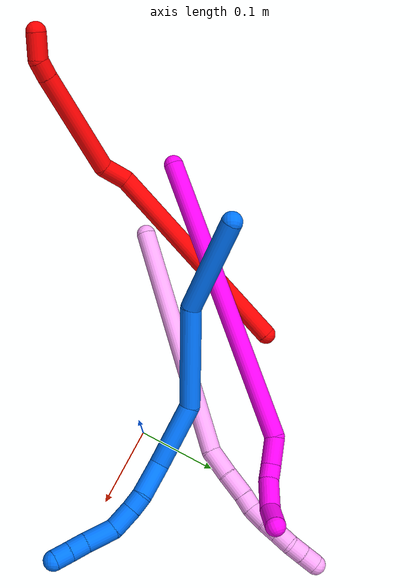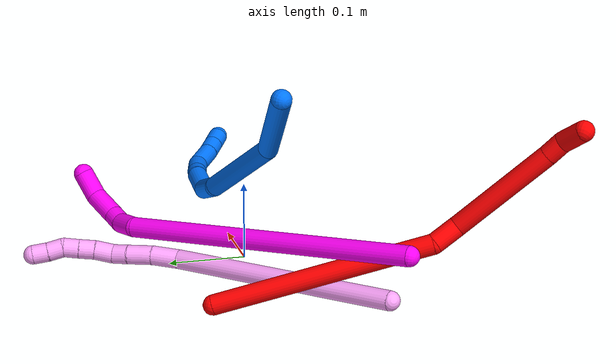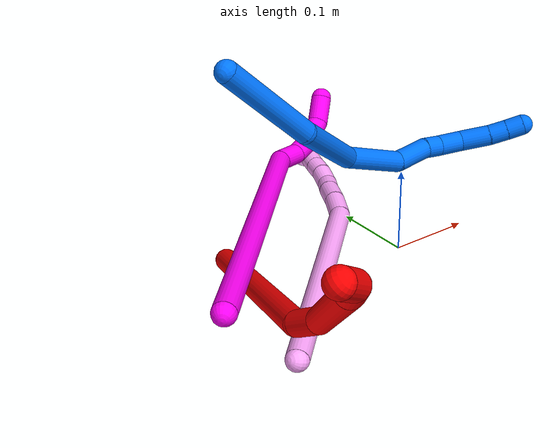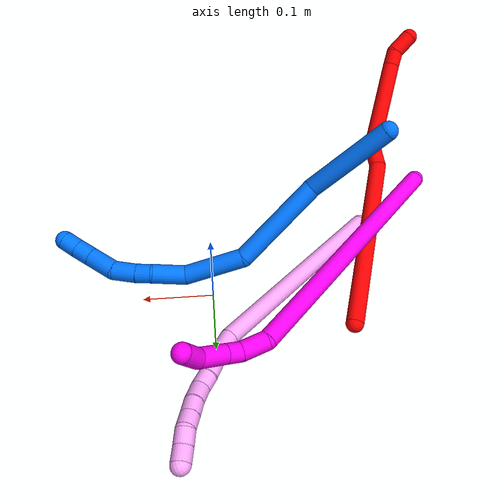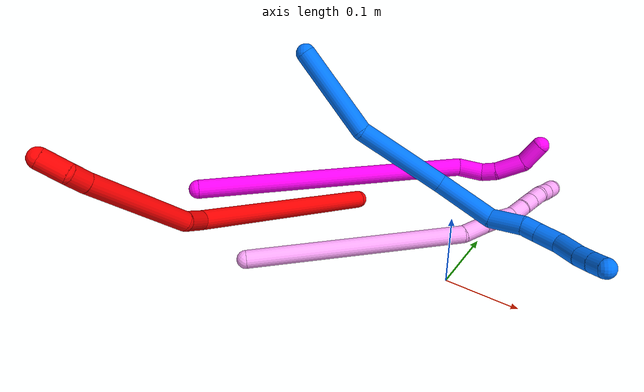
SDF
<sdf version="1.7">
 <world name="default">
  <model name="2">
   <static>0</static>
   <link name="2">
    <collision name="collision-cylinder-e_1_1_4">
     <pose>0.003192 -0.111899 0.077796 0.963275 0.023416 0.01224</pose>
     <geometry><cylinder><radius>0.0125</radius><length>0.272644</length></cylinder></geometry>
     <surface>
      <friction><ode><mu>1.16</mu><mu2>1.16</mu2><slip1>0</slip1><slip2>0</slip2></ode></friction>
      <contact><ode><kp>1e+06</kp><kd>1</kd><max_vel>0</max_vel><min_depth>0.001</min_depth></ode></contact>
     </surface>
    </collision>
    <visual name="visual-cylinder-e_1_1_4">
     <pose>0.003192 -0.111899 0.077796 0.963275 0.023416 0.01224</pose>
     <geometry><cylinder><radius>0.0125</radius><length>0.272644</length></cylinder></geometry>
     <material><ambient>1 0 0 1</ambient></material>
    </visual>
    <collision name="collision-cylinder-e_2_4_5">
     <pose>0.00763 -0.232068 0.170659 0.502004 0.072409 0.018574</pose>
     <geometry><cylinder><radius>0.0125</radius><length>0.034466</length></cylinder></geometry>
     <surface>
      <friction><ode><mu>1.16</mu><mu2>1.16</mu2><slip1>0</slip1><slip2>0</slip2></ode></friction>
      <contact><ode><kp>1e+06</kp><kd>1</kd><max_vel>0</max_vel><min_depth>0.001</min_depth></ode></contact>
     </surface>
    </collision>
    <visual name="visual-cylinder-e_2_4_5">
     <pose>0.00763 -0.232068 0.170659 0.502004 0.072409 0.018574</pose>
     <geometry><cylinder><radius>0.0125</radius><length>0.034466</length></cylinder></geometry>
     <material><ambient>1 0 0 1</ambient></material>
    </visual>
    <collision name="collision-cylinder-e_3_5_6">
     <pose>-0.014732 -0.282681 0.23357 0.724483 -0.353971 -0.135353</pose>
     <geometry><cylinder><radius>0.0125</radius><length>0.136225</length></cylinder></geometry>
     <surface>
      <friction><ode><mu>1.16</mu><mu2>1.16</mu2><slip1>0</slip1><slip2>0</slip2></ode></friction>
      <contact><ode><kp>1e+06</kp><kd>1</kd><max_vel>0</max_vel><min_depth>0.001</min_depth></ode></contact>
     </surface>
    </collision>
    <visual name="visual-cylinder-e_3_5_6">
     <pose>-0.014732 -0.282681 0.23357 0.724483 -0.353971 -0.135353</pose>
     <geometry><cylinder><radius>0.0125</radius><length>0.136225</length></cylinder></geometry>
     <material><ambient>1 0 0 1</ambient></material>
    </visual>
    <collision name="collision-cylinder-e_4_6_7">
     <pose>-0.043186 -0.331814 0.289452 0.701419 -0.43141 -0.159976</pose>
     <geometry><cylinder><radius>0.0125</radius><length>0.023169</length></cylinder></geometry>
     <surface>
      <friction><ode><mu>1.16</mu><mu2>1.16</mu2><slip1>0</slip1><slip2>0</slip2></ode></friction>
      <contact><ode><kp>1e+06</kp><kd>1</kd><max_vel>0</max_vel><min_depth>0.001</min_depth></ode></contact>
     </surface>
    </collision>
    <visual name="visual-cylinder-e_4_6_7">
     <pose>-0.043186 -0.331814 0.289452 0.701419 -0.43141 -0.159976</pose>
     <geometry><cylinder><radius>0.0125</radius><length>0.023169</length></cylinder></geometry>
     <material><ambient>1 0 0 1</ambient></material>
    </visual>
    <collision name="collision-cylinder-e_5_7_2">
     <pose>-0.058304 -0.35095 0.30224 1.20358 -0.6604 -0.462358</pose>
     <geometry><cylinder><radius>0.0125</radius><length>0.033496</length></cylinder></geometry>
     <surface>
      <friction><ode><mu>1.16</mu><mu2>1.16</mu2><slip1>0</slip1><slip2>0</slip2></ode></friction>
      <contact><ode><kp>1e+06</kp><kd>1</kd><max_vel>0</max_vel><min_depth>0.001</min_depth></ode></contact>
     </surface>
    </collision>
    <visual name="visual-cylinder-e_5_7_2">
     <pose>-0.058304 -0.35095 0.30224 1.20358 -0.6604 -0.462358</pose>
     <geometry><cylinder><radius>0.0125</radius><length>0.033496</length></cylinder></geometry>
     <material><ambient>1 0 0 1</ambient></material>
    </visual>
    <collision name="collision-sphere-2">
     <pose>-0.068577 -0.363295 0.306988 0 -0 0</pose>
     <geometry><sphere><radius>0.0125</radius></sphere></geometry>
     <surface>
      <friction><ode><mu>1.16</mu><mu2>1.16</mu2><slip1>0</slip1><slip2>0</slip2></ode></friction>
      <contact><ode><kp>1e+06</kp><kd>1</kd><max_vel>0</max_vel><min_depth>0.001</min_depth></ode></contact>
     </surface>
    </collision>
    <visual name="visual-sphere-2">
     <pose>-0.068577 -0.363295 0.306988 0 -0 0</pose>
     <geometry><sphere><radius>0.0125</radius></sphere></geometry>
     <material><ambient>1 0 0 1</ambient></material>
    </visual>
    <collision name="collision-sphere-7">
     <pose>-0.04803 -0.338605 0.297491 0 -0 0</pose>
     <geometry><sphere><radius>0.0125</radius></sphere></geometry>
     <surface>
      <friction><ode><mu>1.16</mu><mu2>1.16</mu2><slip1>0</slip1><slip2>0</slip2></ode></friction>
      <contact><ode><kp>1e+06</kp><kd>1</kd><max_vel>0</max_vel><min_depth>0.001</min_depth></ode></contact>
     </surface>
    </collision>
    <visual name="visual-sphere-7">
     <pose>-0.04803 -0.338605 0.297491 0 -0 0</pose>
     <geometry><sphere><radius>0.0125</radius></sphere></geometry>
     <material><ambient>1 0 0 1</ambient></material>
    </visual>
    <collision name="collision-sphere-6">
     <pose>-0.038342 -0.325024 0.281413 0 -0 0</pose>
     <geometry><sphere><radius>0.0125</radius></sphere></geometry>
     <surface>
      <friction><ode><mu>1.16</mu><mu2>1.16</mu2><slip1>0</slip1><slip2>0</slip2></ode></friction>
      <contact><ode><kp>1e+06</kp><kd>1</kd><max_vel>0</max_vel><min_depth>0.001</min_depth></ode></contact>
     </surface>
    </collision>
    <visual name="visual-sphere-6">
     <pose>-0.038342 -0.325024 0.281413 0 -0 0</pose>
     <geometry><sphere><radius>0.0125</radius></sphere></geometry>
     <material><ambient>1 0 0 1</ambient></material>
    </visual>
    <collision name="collision-sphere-5">
     <pose>0.008877 -0.240338 0.185727 0 -0 0</pose>
     <geometry><sphere><radius>0.0125</radius></sphere></geometry>
     <surface>
      <friction><ode><mu>1.16</mu><mu2>1.16</mu2><slip1>0</slip1><slip2>0</slip2></ode></friction>
      <contact><ode><kp>1e+06</kp><kd>1</kd><max_vel>0</max_vel><min_depth>0.001</min_depth></ode></contact>
     </surface>
    </collision>
    <visual name="visual-sphere-5">
     <pose>0.008877 -0.240338 0.185727 0 -0 0</pose>
     <geometry><sphere><radius>0.0125</radius></sphere></geometry>
     <material><ambient>1 0 0 1</ambient></material>
    </visual>
    <collision name="collision-sphere-1">
     <geometry><sphere><radius>0.0125</radius></sphere></geometry>
     <surface>
      <friction><ode><mu>1.16</mu><mu2>1.16</mu2><slip1>0</slip1><slip2>0</slip2></ode></friction>
      <contact><ode><kp>1e+06</kp><kd>1</kd><max_vel>0</max_vel><min_depth>0.001</min_depth></ode></contact>
     </surface>
    </collision>
    <visual name="visual-sphere-1">
     <geometry><sphere><radius>0.0125</radius></sphere></geometry>
     <material><ambient>1 0 0 1</ambient></material>
    </visual>
    <collision name="collision-sphere-4">
     <pose>0.006384 -0.223797 0.155592 0 -0 0</pose>
     <geometry><sphere><radius>0.0125</radius></sphere></geometry>
     <surface>
      <friction><ode><mu>1.16</mu><mu2>1.16</mu2><slip1>0</slip1><slip2>0</slip2></ode></friction>
      <contact><ode><kp>1e+06</kp><kd>1</kd><max_vel>0</max_vel><min_depth>0.001</min_depth></ode></contact>
     </surface>
    </collision>
    <visual name="visual-sphere-4">
     <pose>0.006384 -0.223797 0.155592 0 -0 0</pose>
     <geometry><sphere><radius>0.0125</radius></sphere></geometry>
     <material><ambient>1 0 0 1</ambient></material>
    </visual>
    <inertial>
     <pose>-0.007654 -0.192917 0.151481 0 -0 0</pose>
     <mass>0.5</mass>
     <inertia>
      <ixx>0.001896</ixx>
      <ixy>0</ixy>
      <ixz>0</ixz>
      <iyy>0.001109</iyy>
      <iyz>0</iyz>
      <izz>0.001598</izz>
     </inertia>
    </inertial>
   </link>
   <pose>-0.188349 0.082331 0.012288 0.151745 0.770255 -0.653409</pose>
  </model>
  <model name="4">
   <static>0</static>
   <link name="4">
    <collision name="collision-cylinder-e_1_1_4">
     <pose>0.097739 0.036671 -0.111584 -2.82407 0.694033 -2.30803</pose>
     <geometry><cylinder><radius>0.0125</radius><length>0.305606</length></cylinder></geometry>
     <surface>
      <friction><ode><mu>1.16</mu><mu2>1.16</mu2><slip1>0</slip1><slip2>0</slip2></ode></friction>
      <contact><ode><kp>1e+06</kp><kd>1</kd><max_vel>0</max_vel><min_depth>0.001</min_depth></ode></contact>
     </surface>
    </collision>
    <visual name="visual-cylinder-e_1_1_4">
     <pose>0.097739 0.036671 -0.111584 -2.82407 0.694033 -2.30803</pose>
     <geometry><cylinder><radius>0.0125</radius><length>0.305606</length></cylinder></geometry>
     <material><ambient>1 0.65098 0.996078 1</ambient></material>
    </visual>
    <collision name="collision-cylinder-e_2_4_5">
     <pose>0.209405 0.080419 -0.231719 -2.45029 0.897891 -1.8578</pose>
     <geometry><cylinder><radius>0.0125</radius><length>0.035616</length></cylinder></geometry>
     <surface>
      <friction><ode><mu>1.16</mu><mu2>1.16</mu2><slip1>0</slip1><slip2>0</slip2></ode></friction>
      <contact><ode><kp>1e+06</kp><kd>1</kd><max_vel>0</max_vel><min_depth>0.001</min_depth></ode></contact>
     </surface>
    </collision>
    <visual name="visual-cylinder-e_2_4_5">
     <pose>0.209405 0.080419 -0.231719 -2.45029 0.897891 -1.8578</pose>
     <geometry><cylinder><radius>0.0125</radius><length>0.035616</length></cylinder></geometry>
     <material><ambient>1 0.65098 0.996078 1</ambient></material>
    </visual>
    <collision name="collision-cylinder-e_3_5_6">
     <pose>0.235039 0.095481 -0.24803 -2.34186 0.810479 -1.5857</pose>
     <geometry><cylinder><radius>0.0125</radius><length>0.032315</length></cylinder></geometry>
     <surface>
      <friction><ode><mu>1.16</mu><mu2>1.16</mu2><slip1>0</slip1><slip2>0</slip2></ode></friction>
      <contact><ode><kp>1e+06</kp><kd>1</kd><max_vel>0</max_vel><min_depth>0.001</min_depth></ode></contact>
     </surface>
    </collision>
    <visual name="visual-cylinder-e_3_5_6">
     <pose>0.235039 0.095481 -0.24803 -2.34186 0.810479 -1.5857</pose>
     <geometry><cylinder><radius>0.0125</radius><length>0.032315</length></cylinder></geometry>
     <material><ambient>1 0.65098 0.996078 1</ambient></material>
    </visual>
    <collision name="collision-cylinder-e_4_6_7">
     <pose>0.253801 0.108072 -0.261554 -2.46751 0.762938 -1.70554</pose>
     <geometry><cylinder><radius>0.0125</radius><length>0.020414</length></cylinder></geometry>
     <surface>
      <friction><ode><mu>1.16</mu><mu2>1.16</mu2><slip1>0</slip1><slip2>0</slip2></ode></friction>
      <contact><ode><kp>1e+06</kp><kd>1</kd><max_vel>0</max_vel><min_depth>0.001</min_depth></ode></contact>
     </surface>
    </collision>
    <visual name="visual-cylinder-e_4_6_7">
     <pose>0.253801 0.108072 -0.261554 -2.46751 0.762938 -1.70554</pose>
     <geometry><cylinder><radius>0.0125</radius><length>0.020414</length></cylinder></geometry>
     <material><ambient>1 0.65098 0.996078 1</ambient></material>
    </visual>
    <collision name="collision-cylinder-e_5_7_8">
     <pose>0.271529 0.117522 -0.271092 -2.23249 1.04874 -1.73853</pose>
     <geometry><cylinder><radius>0.0125</radius><length>0.024629</length></cylinder></geometry>
     <surface>
      <friction><ode><mu>1.16</mu><mu2>1.16</mu2><slip1>0</slip1><slip2>0</slip2></ode></friction>
      <contact><ode><kp>1e+06</kp><kd>1</kd><max_vel>0</max_vel><min_depth>0.001</min_depth></ode></contact>
     </surface>
    </collision>
    <visual name="visual-cylinder-e_5_7_8">
     <pose>0.271529 0.117522 -0.271092 -2.23249 1.04874 -1.73853</pose>
     <geometry><cylinder><radius>0.0125</radius><length>0.024629</length></cylinder></geometry>
     <material><ambient>1 0.65098 0.996078 1</ambient></material>
    </visual>
    <collision name="collision-cylinder-e_6_8_9">
     <pose>0.290509 0.127816 -0.277801 -2.06491 0.930363 -1.39789</pose>
     <geometry><cylinder><radius>0.0125</radius><length>0.020717</length></cylinder></geometry>
     <surface>
      <friction><ode><mu>1.16</mu><mu2>1.16</mu2><slip1>0</slip1><slip2>0</slip2></ode></friction>
      <contact><ode><kp>1e+06</kp><kd>1</kd><max_vel>0</max_vel><min_depth>0.001</min_depth></ode></contact>
     </surface>
    </collision>
    <visual name="visual-cylinder-e_6_8_9">
     <pose>0.290509 0.127816 -0.277801 -2.06491 0.930363 -1.39789</pose>
     <geometry><cylinder><radius>0.0125</radius><length>0.020717</length></cylinder></geometry>
     <material><ambient>1 0.65098 0.996078 1</ambient></material>
    </visual>
    <collision name="collision-cylinder-e_7_9_10">
     <pose>0.306965 0.138274 -0.283664 -2.09975 0.952189 -1.46419</pose>
     <geometry><cylinder><radius>0.0125</radius><length>0.02001</length></cylinder></geometry>
     <surface>
      <friction><ode><mu>1.16</mu><mu2>1.16</mu2><slip1>0</slip1><slip2>0</slip2></ode></friction>
      <contact><ode><kp>1e+06</kp><kd>1</kd><max_vel>0</max_vel><min_depth>0.001</min_depth></ode></contact>
     </surface>
    </collision>
    <visual name="visual-cylinder-e_7_9_10">
     <pose>0.306965 0.138274 -0.283664 -2.09975 0.952189 -1.46419</pose>
     <geometry><cylinder><radius>0.0125</radius><length>0.02001</length></cylinder></geometry>
     <material><ambient>1 0.65098 0.996078 1</ambient></material>
    </visual>
    <collision name="collision-cylinder-e_8_10_11">
     <pose>0.320691 0.151154 -0.289955 -1.97463 0.577268 -0.845342</pose>
     <geometry><cylinder><radius>0.0125</radius><length>0.02043</length></cylinder></geometry>
     <surface>
      <friction><ode><mu>1.16</mu><mu2>1.16</mu2><slip1>0</slip1><slip2>0</slip2></ode></friction>
      <contact><ode><kp>1e+06</kp><kd>1</kd><max_vel>0</max_vel><min_depth>0.001</min_depth></ode></contact>
     </surface>
    </collision>
    <visual name="visual-cylinder-e_8_10_11">
     <pose>0.320691 0.151154 -0.289955 -1.97463 0.577268 -0.845342</pose>
     <geometry><cylinder><radius>0.0125</radius><length>0.02043</length></cylinder></geometry>
     <material><ambient>1 0.65098 0.996078 1</ambient></material>
    </visual>
    <collision name="collision-cylinder-e_9_11_2">
     <pose>0.332672 0.166249 -0.296387 -1.97245 0.684625 -0.98795</pose>
     <geometry><cylinder><radius>0.0125</radius><length>0.020262</length></cylinder></geometry>
     <surface>
      <friction><ode><mu>1.16</mu><mu2>1.16</mu2><slip1>0</slip1><slip2>0</slip2></ode></friction>
      <contact><ode><kp>1e+06</kp><kd>1</kd><max_vel>0</max_vel><min_depth>0.001</min_depth></ode></contact>
     </surface>
    </collision>
    <visual name="visual-cylinder-e_9_11_2">
     <pose>0.332672 0.166249 -0.296387 -1.97245 0.684625 -0.98795</pose>
     <geometry><cylinder><radius>0.0125</radius><length>0.020262</length></cylinder></geometry>
     <material><ambient>1 0.65098 0.996078 1</ambient></material>
    </visual>
    <collision name="collision-sphere-2">
     <pose>0.339079 0.173472 -0.299455 0 -0 0</pose>
     <geometry><sphere><radius>0.0125</radius></sphere></geometry>
     <surface>
      <friction><ode><mu>1.16</mu><mu2>1.16</mu2><slip1>0</slip1><slip2>0</slip2></ode></friction>
      <contact><ode><kp>1e+06</kp><kd>1</kd><max_vel>0</max_vel><min_depth>0.001</min_depth></ode></contact>
     </surface>
    </collision>
    <visual name="visual-sphere-2">
     <pose>0.339079 0.173472 -0.299455 0 -0 0</pose>
     <geometry><sphere><radius>0.0125</radius></sphere></geometry>
     <material><ambient>1 0.65098 0.996078 1</ambient></material>
    </visual>
    <collision name="collision-sphere-11">
     <pose>0.326266 0.159025 -0.293319 0 -0 0</pose>
     <geometry><sphere><radius>0.0125</radius></sphere></geometry>
     <surface>
      <friction><ode><mu>1.16</mu><mu2>1.16</mu2><slip1>0</slip1><slip2>0</slip2></ode></friction>
      <contact><ode><kp>1e+06</kp><kd>1</kd><max_vel>0</max_vel><min_depth>0.001</min_depth></ode></contact>
     </surface>
    </collision>
    <visual name="visual-sphere-11">
     <pose>0.326266 0.159025 -0.293319 0 -0 0</pose>
     <geometry><sphere><radius>0.0125</radius></sphere></geometry>
     <material><ambient>1 0.65098 0.996078 1</ambient></material>
    </visual>
    <collision name="collision-sphere-10">
     <pose>0.315116 0.143283 -0.286592 0 -0 0</pose>
     <geometry><sphere><radius>0.0125</radius></sphere></geometry>
     <surface>
      <friction><ode><mu>1.16</mu><mu2>1.16</mu2><slip1>0</slip1><slip2>0</slip2></ode></friction>
      <contact><ode><kp>1e+06</kp><kd>1</kd><max_vel>0</max_vel><min_depth>0.001</min_depth></ode></contact>
     </surface>
    </collision>
    <visual name="visual-sphere-10">
     <pose>0.315116 0.143283 -0.286592 0 -0 0</pose>
     <geometry><sphere><radius>0.0125</radius></sphere></geometry>
     <material><ambient>1 0.65098 0.996078 1</ambient></material>
    </visual>
    <collision name="collision-sphere-9">
     <pose>0.298815 0.133265 -0.280736 0 -0 0</pose>
     <geometry><sphere><radius>0.0125</radius></sphere></geometry>
     <surface>
      <friction><ode><mu>1.16</mu><mu2>1.16</mu2><slip1>0</slip1><slip2>0</slip2></ode></friction>
      <contact><ode><kp>1e+06</kp><kd>1</kd><max_vel>0</max_vel><min_depth>0.001</min_depth></ode></contact>
     </surface>
    </collision>
    <visual name="visual-sphere-9">
     <pose>0.298815 0.133265 -0.280736 0 -0 0</pose>
     <geometry><sphere><radius>0.0125</radius></sphere></geometry>
     <material><ambient>1 0.65098 0.996078 1</ambient></material>
    </visual>
    <collision name="collision-sphere-4">
     <pose>0.195479 0.073343 -0.223169 0 -0 0</pose>
     <geometry><sphere><radius>0.0125</radius></sphere></geometry>
     <surface>
      <friction><ode><mu>1.16</mu><mu2>1.16</mu2><slip1>0</slip1><slip2>0</slip2></ode></friction>
      <contact><ode><kp>1e+06</kp><kd>1</kd><max_vel>0</max_vel><min_depth>0.001</min_depth></ode></contact>
     </surface>
    </collision>
    <visual name="visual-sphere-4">
     <pose>0.195479 0.073343 -0.223169 0 -0 0</pose>
     <geometry><sphere><radius>0.0125</radius></sphere></geometry>
     <material><ambient>1 0.65098 0.996078 1</ambient></material>
    </visual>
    <collision name="collision-sphere-1">
     <geometry><sphere><radius>0.0125</radius></sphere></geometry>
     <surface>
      <friction><ode><mu>1.16</mu><mu2>1.16</mu2><slip1>0</slip1><slip2>0</slip2></ode></friction>
      <contact><ode><kp>1e+06</kp><kd>1</kd><max_vel>0</max_vel><min_depth>0.001</min_depth></ode></contact>
     </surface>
    </collision>
    <visual name="visual-sphere-1">
     <geometry><sphere><radius>0.0125</radius></sphere></geometry>
     <material><ambient>1 0.65098 0.996078 1</ambient></material>
    </visual>
    <collision name="collision-sphere-8">
     <pose>0.282203 0.122366 -0.274865 0 -0 0</pose>
     <geometry><sphere><radius>0.0125</radius></sphere></geometry>
     <surface>
      <friction><ode><mu>1.16</mu><mu2>1.16</mu2><slip1>0</slip1><slip2>0</slip2></ode></friction>
      <contact><ode><kp>1e+06</kp><kd>1</kd><max_vel>0</max_vel><min_depth>0.001</min_depth></ode></contact>
     </surface>
    </collision>
    <visual name="visual-sphere-8">
     <pose>0.282203 0.122366 -0.274865 0 -0 0</pose>
     <geometry><sphere><radius>0.0125</radius></sphere></geometry>
     <material><ambient>1 0.65098 0.996078 1</ambient></material>
    </visual>
    <collision name="collision-sphere-5">
     <pose>0.223331 0.087495 -0.24027 0 -0 0</pose>
     <geometry><sphere><radius>0.0125</radius></sphere></geometry>
     <surface>
      <friction><ode><mu>1.16</mu><mu2>1.16</mu2><slip1>0</slip1><slip2>0</slip2></ode></friction>
      <contact><ode><kp>1e+06</kp><kd>1</kd><max_vel>0</max_vel><min_depth>0.001</min_depth></ode></contact>
     </surface>
    </collision>
    <visual name="visual-sphere-5">
     <pose>0.223331 0.087495 -0.24027 0 -0 0</pose>
     <geometry><sphere><radius>0.0125</radius></sphere></geometry>
     <material><ambient>1 0.65098 0.996078 1</ambient></material>
    </visual>
    <collision name="collision-sphere-6">
     <pose>0.246747 0.103467 -0.25579 0 -0 0</pose>
     <geometry><sphere><radius>0.0125</radius></sphere></geometry>
     <surface>
      <friction><ode><mu>1.16</mu><mu2>1.16</mu2><slip1>0</slip1><slip2>0</slip2></ode></friction>
      <contact><ode><kp>1e+06</kp><kd>1</kd><max_vel>0</max_vel><min_depth>0.001</min_depth></ode></contact>
     </surface>
    </collision>
    <visual name="visual-sphere-6">
     <pose>0.246747 0.103467 -0.25579 0 -0 0</pose>
     <geometry><sphere><radius>0.0125</radius></sphere></geometry>
     <material><ambient>1 0.65098 0.996078 1</ambient></material>
    </visual>
    <collision name="collision-sphere-7">
     <pose>0.260855 0.112677 -0.267319 0 -0 0</pose>
     <geometry><sphere><radius>0.0125</radius></sphere></geometry>
     <surface>
      <friction><ode><mu>1.16</mu><mu2>1.16</mu2><slip1>0</slip1><slip2>0</slip2></ode></friction>
      <contact><ode><kp>1e+06</kp><kd>1</kd><max_vel>0</max_vel><min_depth>0.001</min_depth></ode></contact>
     </surface>
    </collision>
    <visual name="visual-sphere-7">
     <pose>0.260855 0.112677 -0.267319 0 -0 0</pose>
     <geometry><sphere><radius>0.0125</radius></sphere></geometry>
     <material><ambient>1 0.65098 0.996078 1</ambient></material>
    </visual>
    <inertial>
     <pose>0.16449 0.068258 -0.171491 0 -0 0</pose>
     <mass>0.5</mass>
     <inertia>
      <ixx>-0.00258</ixx>
      <ixy>0</ixy>
      <ixz>0</ixz>
      <iyy>0.000532</iyy>
      <iyz>0</iyz>
      <izz>-0.00215</izz>
     </inertia>
    </inertial>
   </link>
   <pose>-0.236518 -0.12323 0.015485 -1.04601 -0.715796 1.31092</pose>
  </model>
  <model name="10">
   <static>0</static>
   <link name="10">
    <collision name="collision-cylinder-e_1_1_4">
     <pose>0.014458 0.025338 0.183596 -0.137143 0.077855 -0.00535</pose>
     <geometry><cylinder><radius>0.0125</radius><length>0.371798</length></cylinder></geometry>
     <surface>
      <friction><ode><mu>1.16</mu><mu2>1.16</mu2><slip1>0</slip1><slip2>0</slip2></ode></friction>
      <contact><ode><kp>1e+06</kp><kd>1</kd><max_vel>0</max_vel><min_depth>0.001</min_depth></ode></contact>
     </surface>
    </collision>
    <visual name="visual-cylinder-e_1_1_4">
     <pose>0.014458 0.025338 0.183596 -0.137143 0.077855 -0.00535</pose>
     <geometry><cylinder><radius>0.0125</radius><length>0.371798</length></cylinder></geometry>
     <material><ambient>1 0 0.964706 1</ambient></material>
    </visual>
    <collision name="collision-cylinder-e_2_4_5">
     <pose>0.03788 0.050272 0.382069 0.027153 0.542039 0.007545</pose>
     <geometry><cylinder><radius>0.0125</radius><length>0.034748</length></cylinder></geometry>
     <surface>
      <friction><ode><mu>1.16</mu><mu2>1.16</mu2><slip1>0</slip1><slip2>0</slip2></ode></friction>
      <contact><ode><kp>1e+06</kp><kd>1</kd><max_vel>0</max_vel><min_depth>0.001</min_depth></ode></contact>
     </surface>
    </collision>
    <visual name="visual-cylinder-e_2_4_5">
     <pose>0.03788 0.050272 0.382069 0.027153 0.542039 0.007545</pose>
     <geometry><cylinder><radius>0.0125</radius><length>0.034748</length></cylinder></geometry>
     <material><ambient>1 0 0.964706 1</ambient></material>
    </visual>
    <collision name="collision-cylinder-e_3_5_6">
     <pose>0.050734 0.046189 0.405662 0.39946 0.390274 0.079978</pose>
     <geometry><cylinder><radius>0.0125</radius><length>0.020456</length></cylinder></geometry>
     <surface>
      <friction><ode><mu>1.16</mu><mu2>1.16</mu2><slip1>0</slip1><slip2>0</slip2></ode></friction>
      <contact><ode><kp>1e+06</kp><kd>1</kd><max_vel>0</max_vel><min_depth>0.001</min_depth></ode></contact>
     </surface>
    </collision>
    <visual name="visual-cylinder-e_3_5_6">
     <pose>0.050734 0.046189 0.405662 0.39946 0.390274 0.079978</pose>
     <geometry><cylinder><radius>0.0125</radius><length>0.020456</length></cylinder></geometry>
     <material><ambient>1 0 0.964706 1</ambient></material>
    </visual>
    <collision name="collision-cylinder-e_4_6_7">
     <pose>0.057528 0.033857 0.432128 0.453567 0.145938 0.033732</pose>
     <geometry><cylinder><radius>0.0125</radius><length>0.039922</length></cylinder></geometry>
     <surface>
      <friction><ode><mu>1.16</mu><mu2>1.16</mu2><slip1>0</slip1><slip2>0</slip2></ode></friction>
      <contact><ode><kp>1e+06</kp><kd>1</kd><max_vel>0</max_vel><min_depth>0.001</min_depth></ode></contact>
     </surface>
    </collision>
    <visual name="visual-cylinder-e_4_6_7">
     <pose>0.057528 0.033857 0.432128 0.453567 0.145938 0.033732</pose>
     <geometry><cylinder><radius>0.0125</radius><length>0.039922</length></cylinder></geometry>
     <material><ambient>1 0 0.964706 1</ambient></material>
    </visual>
    <collision name="collision-cylinder-e_5_7_2">
     <pose>0.056767 0.01354 0.461018 0.808416 -0.223395 -0.095886</pose>
     <geometry><cylinder><radius>0.0125</radius><length>0.033076</length></cylinder></geometry>
     <surface>
      <friction><ode><mu>1.16</mu><mu2>1.16</mu2><slip1>0</slip1><slip2>0</slip2></ode></friction>
      <contact><ode><kp>1e+06</kp><kd>1</kd><max_vel>0</max_vel><min_depth>0.001</min_depth></ode></contact>
     </surface>
    </collision>
    <visual name="visual-cylinder-e_5_7_2">
     <pose>0.056767 0.01354 0.461018 0.808416 -0.223395 -0.095886</pose>
     <geometry><cylinder><radius>0.0125</radius><length>0.033076</length></cylinder></geometry>
     <material><ambient>1 0 0.964706 1</ambient></material>
    </visual>
    <collision name="collision-sphere-2">
     <pose>0.053103 0.001877 0.472156 0 -0 0</pose>
     <geometry><sphere><radius>0.0125</radius></sphere></geometry>
     <surface>
      <friction><ode><mu>1.16</mu><mu2>1.16</mu2><slip1>0</slip1><slip2>0</slip2></ode></friction>
      <contact><ode><kp>1e+06</kp><kd>1</kd><max_vel>0</max_vel><min_depth>0.001</min_depth></ode></contact>
     </surface>
    </collision>
    <visual name="visual-sphere-2">
     <pose>0.053103 0.001877 0.472156 0 -0 0</pose>
     <geometry><sphere><radius>0.0125</radius></sphere></geometry>
     <material><ambient>1 0 0.964706 1</ambient></material>
    </visual>
    <collision name="collision-sphere-7">
     <pose>0.060431 0.025203 0.44988 0 -0 0</pose>
     <geometry><sphere><radius>0.0125</radius></sphere></geometry>
     <surface>
      <friction><ode><mu>1.16</mu><mu2>1.16</mu2><slip1>0</slip1><slip2>0</slip2></ode></friction>
      <contact><ode><kp>1e+06</kp><kd>1</kd><max_vel>0</max_vel><min_depth>0.001</min_depth></ode></contact>
     </surface>
    </collision>
    <visual name="visual-sphere-7">
     <pose>0.060431 0.025203 0.44988 0 -0 0</pose>
     <geometry><sphere><radius>0.0125</radius></sphere></geometry>
     <material><ambient>1 0 0.964706 1</ambient></material>
    </visual>
    <collision name="collision-sphere-6">
     <pose>0.054625 0.04251 0.414376 0 -0 0</pose>
     <geometry><sphere><radius>0.0125</radius></sphere></geometry>
     <surface>
      <friction><ode><mu>1.16</mu><mu2>1.16</mu2><slip1>0</slip1><slip2>0</slip2></ode></friction>
      <contact><ode><kp>1e+06</kp><kd>1</kd><max_vel>0</max_vel><min_depth>0.001</min_depth></ode></contact>
     </surface>
    </collision>
    <visual name="visual-sphere-6">
     <pose>0.054625 0.04251 0.414376 0 -0 0</pose>
     <geometry><sphere><radius>0.0125</radius></sphere></geometry>
     <material><ambient>1 0 0.964706 1</ambient></material>
    </visual>
    <collision name="collision-sphere-5">
     <pose>0.046843 0.049868 0.396947 0 -0 0</pose>
     <geometry><sphere><radius>0.0125</radius></sphere></geometry>
     <surface>
      <friction><ode><mu>1.16</mu><mu2>1.16</mu2><slip1>0</slip1><slip2>0</slip2></ode></friction>
      <contact><ode><kp>1e+06</kp><kd>1</kd><max_vel>0</max_vel><min_depth>0.001</min_depth></ode></contact>
     </surface>
    </collision>
    <visual name="visual-sphere-5">
     <pose>0.046843 0.049868 0.396947 0 -0 0</pose>
     <geometry><sphere><radius>0.0125</radius></sphere></geometry>
     <material><ambient>1 0 0.964706 1</ambient></material>
    </visual>
    <collision name="collision-sphere-1">
     <geometry><sphere><radius>0.0125</radius></sphere></geometry>
     <surface>
      <friction><ode><mu>1.16</mu><mu2>1.16</mu2><slip1>0</slip1><slip2>0</slip2></ode></friction>
      <contact><ode><kp>1e+06</kp><kd>1</kd><max_vel>0</max_vel><min_depth>0.001</min_depth></ode></contact>
     </surface>
    </collision>
    <visual name="visual-sphere-1">
     <geometry><sphere><radius>0.0125</radius></sphere></geometry>
     <material><ambient>1 0 0.964706 1</ambient></material>
    </visual>
    <collision name="collision-sphere-4">
     <pose>0.028917 0.050676 0.367191 0 -0 0</pose>
     <geometry><sphere><radius>0.0125</radius></sphere></geometry>
     <surface>
      <friction><ode><mu>1.16</mu><mu2>1.16</mu2><slip1>0</slip1><slip2>0</slip2></ode></friction>
      <contact><ode><kp>1e+06</kp><kd>1</kd><max_vel>0</max_vel><min_depth>0.001</min_depth></ode></contact>
     </surface>
    </collision>
    <visual name="visual-sphere-4">
     <pose>0.028917 0.050676 0.367191 0 -0 0</pose>
     <geometry><sphere><radius>0.0125</radius></sphere></geometry>
     <material><ambient>1 0 0.964706 1</ambient></material>
    </visual>
    <inertial>
     <pose>0.023808 0.027824 0.24467 0 -0 0</pose>
     <mass>0.5</mass>
     <inertia>
      <ixx>0.004282</ixx>
      <ixy>0</ixy>
      <ixz>0</ixz>
      <iyy>0.00425</iyy>
      <iyz>0</iyz>
      <izz>-0.00088</izz>
     </inertia>
    </inertial>
   </link>
   <pose>-0.312614 -0.119605 0.09865 -1.46835 0.430014 -0.685028</pose>
  </model>
  <model name="14">
   <static>0</static>
   <link name="14">
    <collision name="collision-cylinder-e_1_1_4">
     <pose>0.049586 -0.002416 -0.034391 3.07147 0.963248 3.00758</pose>
     <geometry><cylinder><radius>0.0125</radius><length>0.120786</length></cylinder></geometry>
     <surface>
      <friction><ode><mu>1.16</mu><mu2>1.16</mu2><slip1>0</slip1><slip2>0</slip2></ode></friction>
      <contact><ode><kp>1e+06</kp><kd>1</kd><max_vel>0</max_vel><min_depth>0.001</min_depth></ode></contact>
     </surface>
    </collision>
    <visual name="visual-cylinder-e_1_1_4">
     <pose>0.049586 -0.002416 -0.034391 3.07147 0.963248 3.00758</pose>
     <geometry><cylinder><radius>0.0125</radius><length>0.120786</length></cylinder></geometry>
     <material><ambient>0 0.462745 1 1</ambient></material>
    </visual>
    <collision name="collision-cylinder-e_2_4_5">
     <pose>0.133673 -0.024185 -0.117394 2.7627 0.58295 2.00424</pose>
     <geometry><cylinder><radius>0.0125</radius><length>0.125349</length></cylinder></geometry>
     <surface>
      <friction><ode><mu>1.16</mu><mu2>1.16</mu2><slip1>0</slip1><slip2>0</slip2></ode></friction>
      <contact><ode><kp>1e+06</kp><kd>1</kd><max_vel>0</max_vel><min_depth>0.001</min_depth></ode></contact>
     </surface>
    </collision>
    <visual name="visual-cylinder-e_2_4_5">
     <pose>0.133673 -0.024185 -0.117394 2.7627 0.58295 2.00424</pose>
     <geometry><cylinder><radius>0.0125</radius><length>0.125349</length></cylinder></geometry>
     <material><ambient>0 0.462745 1 1</ambient></material>
    </visual>
    <collision name="collision-cylinder-e_3_5_6">
     <pose>0.190606 -0.035708 -0.198211 -2.90307 0.594999 -2.39643</pose>
     <geometry><cylinder><radius>0.0125</radius><length>0.080041</length></cylinder></geometry>
     <surface>
      <friction><ode><mu>1.16</mu><mu2>1.16</mu2><slip1>0</slip1><slip2>0</slip2></ode></friction>
      <contact><ode><kp>1e+06</kp><kd>1</kd><max_vel>0</max_vel><min_depth>0.001</min_depth></ode></contact>
     </surface>
    </collision>
    <visual name="visual-cylinder-e_3_5_6">
     <pose>0.190606 -0.035708 -0.198211 -2.90307 0.594999 -2.39643</pose>
     <geometry><cylinder><radius>0.0125</radius><length>0.080041</length></cylinder></geometry>
     <material><ambient>0 0.462745 1 1</ambient></material>
    </visual>
    <collision name="collision-cylinder-e_4_6_7">
     <pose>0.216607 -0.018622 -0.249932 -2.69878 0.163734 -0.699083</pose>
     <geometry><cylinder><radius>0.0125</radius><length>0.043786</length></cylinder></geometry>
     <surface>
      <friction><ode><mu>1.16</mu><mu2>1.16</mu2><slip1>0</slip1><slip2>0</slip2></ode></friction>
      <contact><ode><kp>1e+06</kp><kd>1</kd><max_vel>0</max_vel><min_depth>0.001</min_depth></ode></contact>
     </surface>
    </collision>
    <visual name="visual-cylinder-e_4_6_7">
     <pose>0.216607 -0.018622 -0.249932 -2.69878 0.163734 -0.699083</pose>
     <geometry><cylinder><radius>0.0125</radius><length>0.043786</length></cylinder></geometry>
     <material><ambient>0 0.462745 1 1</ambient></material>
    </visual>
    <collision name="collision-cylinder-e_5_7_8">
     <pose>0.224086 -0.004709 -0.277467 -2.61536 0.399124 -1.28811</pose>
     <geometry><cylinder><radius>0.0125</radius><length>0.020126</length></cylinder></geometry>
     <surface>
      <friction><ode><mu>1.16</mu><mu2>1.16</mu2><slip1>0</slip1><slip2>0</slip2></ode></friction>
      <contact><ode><kp>1e+06</kp><kd>1</kd><max_vel>0</max_vel><min_depth>0.001</min_depth></ode></contact>
     </surface>
    </collision>
    <visual name="visual-cylinder-e_5_7_8">
     <pose>0.224086 -0.004709 -0.277467 -2.61536 0.399124 -1.28811</pose>
     <geometry><cylinder><radius>0.0125</radius><length>0.020126</length></cylinder></geometry>
     <material><ambient>0 0.462745 1 1</ambient></material>
    </visual>
    <collision name="collision-cylinder-e_6_8_9">
     <pose>0.233244 0.00845 -0.297141 -2.5114 0.348835 -0.991183</pose>
     <geometry><cylinder><radius>0.0125</radius><length>0.030705</length></cylinder></geometry>
     <surface>
      <friction><ode><mu>1.16</mu><mu2>1.16</mu2><slip1>0</slip1><slip2>0</slip2></ode></friction>
      <contact><ode><kp>1e+06</kp><kd>1</kd><max_vel>0</max_vel><min_depth>0.001</min_depth></ode></contact>
     </surface>
    </collision>
    <visual name="visual-cylinder-e_6_8_9">
     <pose>0.233244 0.00845 -0.297141 -2.5114 0.348835 -0.991183</pose>
     <geometry><cylinder><radius>0.0125</radius><length>0.030705</length></cylinder></geometry>
     <material><ambient>0 0.462745 1 1</ambient></material>
    </visual>
    <collision name="collision-cylinder-e_7_9_10">
     <pose>0.243607 0.032176 -0.317613 -2.09566 0.283003 -0.484493</pose>
     <geometry><cylinder><radius>0.0125</radius><length>0.03664</length></cylinder></geometry>
     <surface>
      <friction><ode><mu>1.16</mu><mu2>1.16</mu2><slip1>0</slip1><slip2>0</slip2></ode></friction>
      <contact><ode><kp>1e+06</kp><kd>1</kd><max_vel>0</max_vel><min_depth>0.001</min_depth></ode></contact>
     </surface>
    </collision>
    <visual name="visual-cylinder-e_7_9_10">
     <pose>0.243607 0.032176 -0.317613 -2.09566 0.283003 -0.484493</pose>
     <geometry><cylinder><radius>0.0125</radius><length>0.03664</length></cylinder></geometry>
     <material><ambient>0 0.462745 1 1</ambient></material>
    </visual>
    <collision name="collision-cylinder-e_8_10_11">
     <pose>0.250816 0.056438 -0.332149 -2.13511 0.193229 -0.348519</pose>
     <geometry><cylinder><radius>0.0125</radius><length>0.021802</length></cylinder></geometry>
     <surface>
      <friction><ode><mu>1.16</mu><mu2>1.16</mu2><slip1>0</slip1><slip2>0</slip2></ode></friction>
      <contact><ode><kp>1e+06</kp><kd>1</kd><max_vel>0</max_vel><min_depth>0.001</min_depth></ode></contact>
     </surface>
    </collision>
    <visual name="visual-cylinder-e_8_10_11">
     <pose>0.250816 0.056438 -0.332149 -2.13511 0.193229 -0.348519</pose>
     <geometry><cylinder><radius>0.0125</radius><length>0.021802</length></cylinder></geometry>
     <material><ambient>0 0.462745 1 1</ambient></material>
    </visual>
    <collision name="collision-cylinder-e_9_11_2">
     <pose>0.254533 0.074253 -0.343178 -2.11471 0.157032 -0.277264</pose>
     <geometry><cylinder><radius>0.0125</radius><length>0.020765</length></cylinder></geometry>
     <surface>
      <friction><ode><mu>1.16</mu><mu2>1.16</mu2><slip1>0</slip1><slip2>0</slip2></ode></friction>
      <contact><ode><kp>1e+06</kp><kd>1</kd><max_vel>0</max_vel><min_depth>0.001</min_depth></ode></contact>
     </surface>
    </collision>
    <visual name="visual-cylinder-e_9_11_2">
     <pose>0.254533 0.074253 -0.343178 -2.11471 0.157032 -0.277264</pose>
     <geometry><cylinder><radius>0.0125</radius><length>0.020765</length></cylinder></geometry>
     <material><ambient>0 0.462745 1 1</ambient></material>
    </visual>
    <collision name="collision-sphere-2">
     <pose>0.256157 0.083028 -0.348485 0 -0 0</pose>
     <geometry><sphere><radius>0.0125</radius></sphere></geometry>
     <surface>
      <friction><ode><mu>1.16</mu><mu2>1.16</mu2><slip1>0</slip1><slip2>0</slip2></ode></friction>
      <contact><ode><kp>1e+06</kp><kd>1</kd><max_vel>0</max_vel><min_depth>0.001</min_depth></ode></contact>
     </surface>
    </collision>
    <visual name="visual-sphere-2">
     <pose>0.256157 0.083028 -0.348485 0 -0 0</pose>
     <geometry><sphere><radius>0.0125</radius></sphere></geometry>
     <material><ambient>0 0.462745 1 1</ambient></material>
    </visual>
    <collision name="collision-sphere-11">
     <pose>0.25291 0.065478 -0.337871 0 -0 0</pose>
     <geometry><sphere><radius>0.0125</radius></sphere></geometry>
     <surface>
      <friction><ode><mu>1.16</mu><mu2>1.16</mu2><slip1>0</slip1><slip2>0</slip2></ode></friction>
      <contact><ode><kp>1e+06</kp><kd>1</kd><max_vel>0</max_vel><min_depth>0.001</min_depth></ode></contact>
     </surface>
    </collision>
    <visual name="visual-sphere-11">
     <pose>0.25291 0.065478 -0.337871 0 -0 0</pose>
     <geometry><sphere><radius>0.0125</radius></sphere></geometry>
     <material><ambient>0 0.462745 1 1</ambient></material>
    </visual>
    <collision name="collision-sphere-10">
     <pose>0.248723 0.047399 -0.326428 0 -0 0</pose>
     <geometry><sphere><radius>0.0125</radius></sphere></geometry>
     <surface>
      <friction><ode><mu>1.16</mu><mu2>1.16</mu2><slip1>0</slip1><slip2>0</slip2></ode></friction>
      <contact><ode><kp>1e+06</kp><kd>1</kd><max_vel>0</max_vel><min_depth>0.001</min_depth></ode></contact>
     </surface>
    </collision>
    <visual name="visual-sphere-10">
     <pose>0.248723 0.047399 -0.326428 0 -0 0</pose>
     <geometry><sphere><radius>0.0125</radius></sphere></geometry>
     <material><ambient>0 0.462745 1 1</ambient></material>
    </visual>
    <collision name="collision-sphere-9">
     <pose>0.238492 0.016952 -0.308798 0 -0 0</pose>
     <geometry><sphere><radius>0.0125</radius></sphere></geometry>
     <surface>
      <friction><ode><mu>1.16</mu><mu2>1.16</mu2><slip1>0</slip1><slip2>0</slip2></ode></friction>
      <contact><ode><kp>1e+06</kp><kd>1</kd><max_vel>0</max_vel><min_depth>0.001</min_depth></ode></contact>
     </surface>
    </collision>
    <visual name="visual-sphere-9">
     <pose>0.238492 0.016952 -0.308798 0 -0 0</pose>
     <geometry><sphere><radius>0.0125</radius></sphere></geometry>
     <material><ambient>0 0.462745 1 1</ambient></material>
    </visual>
    <collision name="collision-sphere-4">
     <pose>0.099172 -0.004831 -0.068782 0 -0 0</pose>
     <geometry><sphere><radius>0.0125</radius></sphere></geometry>
     <surface>
      <friction><ode><mu>1.16</mu><mu2>1.16</mu2><slip1>0</slip1><slip2>0</slip2></ode></friction>
      <contact><ode><kp>1e+06</kp><kd>1</kd><max_vel>0</max_vel><min_depth>0.001</min_depth></ode></contact>
     </surface>
    </collision>
    <visual name="visual-sphere-4">
     <pose>0.099172 -0.004831 -0.068782 0 -0 0</pose>
     <geometry><sphere><radius>0.0125</radius></sphere></geometry>
     <material><ambient>0 0.462745 1 1</ambient></material>
    </visual>
    <collision name="collision-sphere-1">
     <geometry><sphere><radius>0.0125</radius></sphere></geometry>
     <surface>
      <friction><ode><mu>1.16</mu><mu2>1.16</mu2><slip1>0</slip1><slip2>0</slip2></ode></friction>
      <contact><ode><kp>1e+06</kp><kd>1</kd><max_vel>0</max_vel><min_depth>0.001</min_depth></ode></contact>
     </surface>
    </collision>
    <visual name="visual-sphere-1">
     <geometry><sphere><radius>0.0125</radius></sphere></geometry>
     <material><ambient>0 0.462745 1 1</ambient></material>
    </visual>
    <collision name="collision-sphere-8">
     <pose>0.227997 -5.2e-05 -0.285485 0 -0 0</pose>
     <geometry><sphere><radius>0.0125</radius></sphere></geometry>
     <surface>
      <friction><ode><mu>1.16</mu><mu2>1.16</mu2><slip1>0</slip1><slip2>0</slip2></ode></friction>
      <contact><ode><kp>1e+06</kp><kd>1</kd><max_vel>0</max_vel><min_depth>0.001</min_depth></ode></contact>
     </surface>
    </collision>
    <visual name="visual-sphere-8">
     <pose>0.227997 -5.2e-05 -0.285485 0 -0 0</pose>
     <geometry><sphere><radius>0.0125</radius></sphere></geometry>
     <material><ambient>0 0.462745 1 1</ambient></material>
    </visual>
    <collision name="collision-sphere-5">
     <pose>0.168175 -0.043538 -0.166007 0 -0 0</pose>
     <geometry><sphere><radius>0.0125</radius></sphere></geometry>
     <surface>
      <friction><ode><mu>1.16</mu><mu2>1.16</mu2><slip1>0</slip1><slip2>0</slip2></ode></friction>
      <contact><ode><kp>1e+06</kp><kd>1</kd><max_vel>0</max_vel><min_depth>0.001</min_depth></ode></contact>
     </surface>
    </collision>
    <visual name="visual-sphere-5">
     <pose>0.168175 -0.043538 -0.166007 0 -0 0</pose>
     <geometry><sphere><radius>0.0125</radius></sphere></geometry>
     <material><ambient>0 0.462745 1 1</ambient></material>
    </visual>
    <collision name="collision-sphere-6">
     <pose>0.213038 -0.027877 -0.230415 0 -0 0</pose>
     <geometry><sphere><radius>0.0125</radius></sphere></geometry>
     <surface>
      <friction><ode><mu>1.16</mu><mu2>1.16</mu2><slip1>0</slip1><slip2>0</slip2></ode></friction>
      <contact><ode><kp>1e+06</kp><kd>1</kd><max_vel>0</max_vel><min_depth>0.001</min_depth></ode></contact>
     </surface>
    </collision>
    <visual name="visual-sphere-6">
     <pose>0.213038 -0.027877 -0.230415 0 -0 0</pose>
     <geometry><sphere><radius>0.0125</radius></sphere></geometry>
     <material><ambient>0 0.462745 1 1</ambient></material>
    </visual>
    <collision name="collision-sphere-7">
     <pose>0.220175 -0.009367 -0.269449 0 -0 0</pose>
     <geometry><sphere><radius>0.0125</radius></sphere></geometry>
     <surface>
      <friction><ode><mu>1.16</mu><mu2>1.16</mu2><slip1>0</slip1><slip2>0</slip2></ode></friction>
      <contact><ode><kp>1e+06</kp><kd>1</kd><max_vel>0</max_vel><min_depth>0.001</min_depth></ode></contact>
     </surface>
    </collision>
    <visual name="visual-sphere-7">
     <pose>0.220175 -0.009367 -0.269449 0 -0 0</pose>
     <geometry><sphere><radius>0.0125</radius></sphere></geometry>
     <material><ambient>0 0.462745 1 1</ambient></material>
    </visual>
    <inertial>
     <pose>0.157674 -0.005762 -0.172782 0 -0 0</pose>
     <mass>0.5</mass>
     <inertia>
      <ixx>-3.6e-05</ixx>
      <ixy>0</ixy>
      <ixz>0</ixz>
      <iyy>0.000382</iyy>
      <iyz>0</iyz>
      <izz>-0.00024</izz>
     </inertia>
    </inertial>
   </link>
   <pose>-0.221609 0.006497 0.267181 1.73459 1.05472 -0.962311</pose>
  </model>
 </world>
</sdf>
